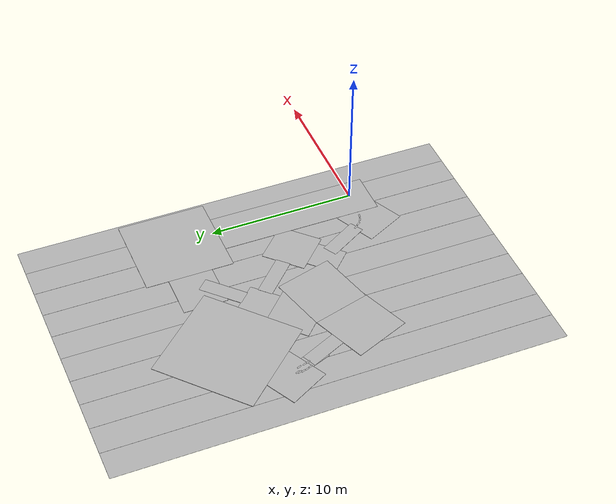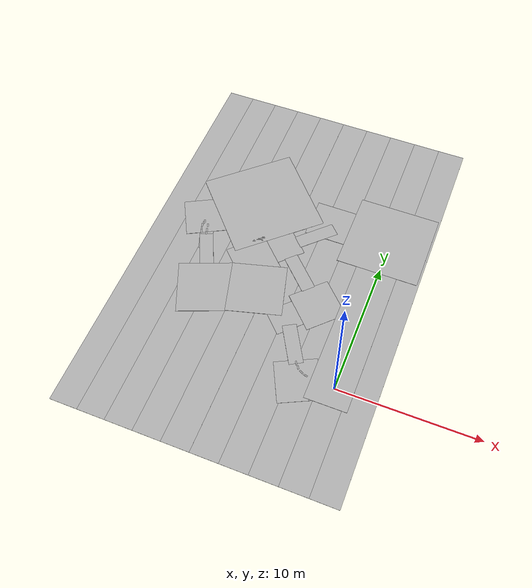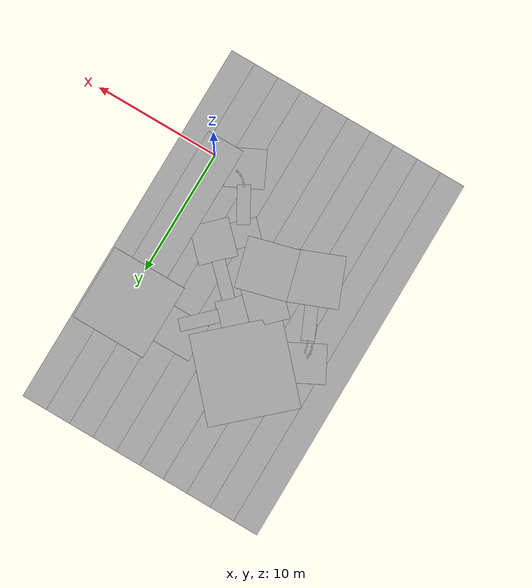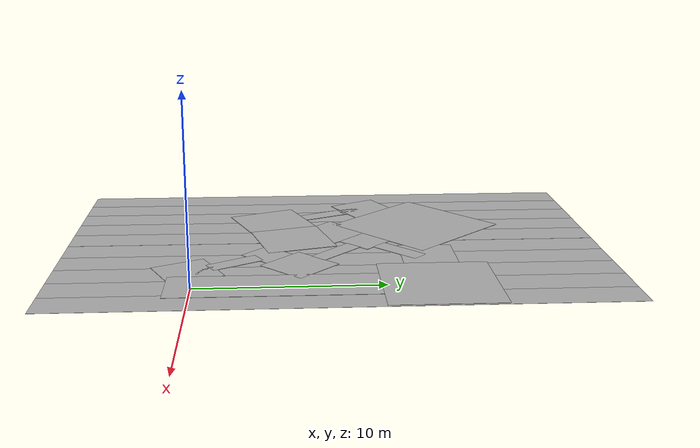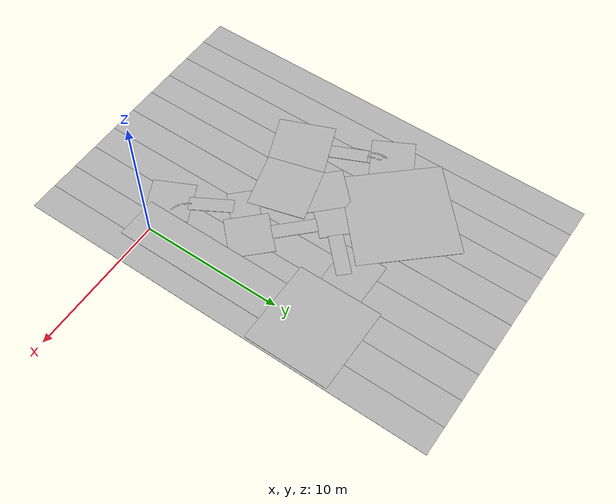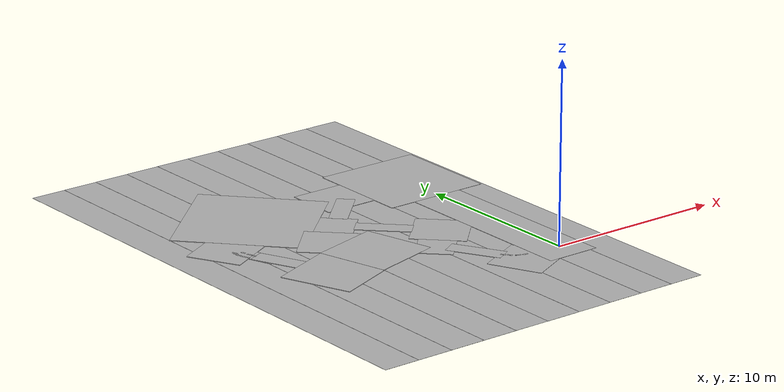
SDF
<sdf version="1.6">
 <world name="default">
  <light name="sun" type="directional">
   <pose>0 0 10 0 -0 0</pose>
   <diffuse>0.8 0.8 0.8 1</diffuse>
   <specular>0.2 0.2 0.2 1</specular>
   <attenuation>
    <range>1000</range>
    <constant>0.9</constant>
    <linear>0.01</linear>
    <quadratic>0.001</quadratic>
   </attenuation>
   <direction>-0.5 0.1 -0.9</direction>
  </light>
  <gravity>0 0 -9.8</gravity>
  <magnetic_field>6e-06 2.3e-05 -4.2e-05</magnetic_field>
  <atmosphere type="adiabatic"/>
  <physics name="default_physics" default="0" type="ode">
   <max_step_size>0.001</max_step_size>
   <real_time_factor>1</real_time_factor>
   <real_time_update_rate>1000</real_time_update_rate>
  </physics>
  <scene><ambient>0.4 0.4 0.4 1</ambient><background>0.7 0.7 0.7 1</background><shadows>1</shadows></scene>
  <audio><device>default</device></audio>
  <spherical_coordinates>
   <surface_model>EARTH_WGS84</surface_model>
   <latitude_deg>0</latitude_deg>
   <longitude_deg>0</longitude_deg>
   <elevation>0</elevation>
   <heading_deg>0</heading_deg>
  </spherical_coordinates>
  <model name="start_w400_black">
   <static>1</static>
   <link name="link">
    <collision name="collision">
     <geometry><box><size>11 3 0.05</size></box></geometry>
     <surface><friction><ode><mu>100</mu><mu2>50</mu2></ode></friction></surface>
    </collision>
    <visual name="visual">
     <cast_shadows>0</cast_shadows>
     <geometry><box><size>11 3 0.05</size></box></geometry>
     <material>
      <script>
       <uri>model://start_w400_black/materials/scripts</uri>
       <uri>model://start_w400_black/materials/textures/</uri>
       <name>start_w400_black/Image</name>
      </script>
     </material>
    </visual>
   </link>
   <pose>-0.193338 4.17342 0 0 -0 1.57079</pose>
  </model>
  <model name="left_curve_r300_a90_00">
   <static>1</static>
   <link name="link">
    <collision name="collision">
     <geometry><box><size>6 6 0.05</size></box></geometry>
     <surface><friction><ode><mu>100</mu><mu2>50</mu2></ode></friction></surface>
    </collision>
    <visual name="visual">
     <cast_shadows>0</cast_shadows>
     <geometry><box><size>6 6 0.05</size></box></geometry>
     <material>
      <script>
       <uri>model://left_curve_r300_a90_00/materials/scripts</uri>
       <uri>model://left_curve_r300_a90_00/materials/textures/</uri>
       <name>left_curve_r300_a90_00/Image</name>
      </script>
     </material>
    </visual>
   </link>
   <pose>-0.193023 12.674 0 0 -0 3.14159</pose>
  </model>
  <model name="left_curve_r150_a45_030">
   <static>1</static>
   <link name="link">
    <collision name="collision">
     <geometry><box><size>3 3 0.05</size></box></geometry>
     <surface><friction><ode><mu>100</mu><mu2>50</mu2></ode></friction></surface>
    </collision>
    <visual name="visual">
     <cast_shadows>0</cast_shadows>
     <geometry><box><size>3 3 0.05</size></box></geometry>
     <material>
      <script>
       <uri>model://left_curve_r150_a45_030/materials/scripts</uri>
       <uri>model://left_curve_r150_a45_030/materials/textures/</uri>
       <name>left_curve_r150_a45_030/Image</name>
      </script>
     </material>
    </visual>
   </link>
   <pose>-4.6927 12.6748 0 0 0 -1.5708</pose>
  </model>
  <model name="stop_crossing">
   <static>1</static>
   <link name="link">
    <collision name="collision">
     <geometry><box><size>2.1 2.1 0.05</size></box></geometry>
     <surface><friction><ode><mu>100</mu><mu2>50</mu2></ode></friction></surface>
    </collision>
    <visual name="visual">
     <cast_shadows>0</cast_shadows>
     <geometry><box><size>2.1 2.1 0.05</size></box></geometry>
     <material>
      <script>
       <uri>model://stop_crossing/materials/scripts</uri>
       <uri>model://stop_crossing/materials/textures/</uri>
       <name>stop_crossing/Image</name>
      </script>
     </material>
    </visual>
   </link>
   <pose>-7.10184 9.42657 0 0 -0 0.789918</pose>
  </model>
  <model name="straight_300_o_25">
   <static>1</static>
   <link name="link">
    <collision name="collision">
     <geometry><box><size>3 1 0.05</size></box></geometry>
     <surface><friction><ode><mu>100</mu><mu2>50</mu2></ode></friction></surface>
    </collision>
    <visual name="visual">
     <cast_shadows>0</cast_shadows>
     <geometry><box><size>3 1 0.05</size></box></geometry>
     <material>
      <script>
       <uri>model://straight_300_o_25/materials/scripts</uri>
       <uri>model://straight_300_o_25/materials/textures/</uri>
       <name>straight_300_o_25/Image</name>
      </script>
     </material>
    </visual>
   </link>
   <pose>-5.32382 11.1876 0.001 0 -0 0.774294</pose>
  </model>
  <model name="straight_300_o_25_0">
   <static>1</static>
   <link name="link">
    <collision name="collision">
     <geometry><box><size>3 1 0.05</size></box></geometry>
     <surface><friction><ode><mu>100</mu><mu2>50</mu2></ode></friction></surface>
    </collision>
    <visual name="visual">
     <cast_shadows>0</cast_shadows>
     <geometry><box><size>3 1 0.05</size></box></geometry>
     <material>
      <script>
       <uri>model://straight_300_o_25/materials/scripts</uri>
       <uri>model://straight_300_o_25/materials/textures/</uri>
       <name>straight_300_o_25/Image</name>
      </script>
     </material>
    </visual>
   </link>
   <pose>-5.32432 7.66399 0.00145 0 0 -0.781825</pose>
  </model>
  <model name="right_curve_r150_a90_o30">
   <static>1</static>
   <link name="link">
    <collision name="collision">
     <geometry><box><size>3 3 0.05</size></box></geometry>
     <surface><friction><ode><mu>100</mu><mu2>50</mu2></ode></friction></surface>
    </collision>
    <visual name="visual">
     <cast_shadows>0</cast_shadows>
     <geometry><box><size>3 3 0.05</size></box></geometry>
     <material>
      <script>
       <uri>model://right_curve_r150_a90_o30/materials/scripts</uri>
       <uri>model://right_curve_r150_a90_o30/materials/textures/</uri>
       <name>right_curve_r150_a90_o30/Image</name>
      </script>
     </material>
    </visual>
   </link>
   <pose>-3.23155 5.58171 0 0 -0 2.35677</pose>
  </model>
  <model name="left_curve_r100_a75_025">
   <static>1</static>
   <link name="link">
    <collision name="collision">
     <geometry><box><size>2 2 0.05</size></box></geometry>
     <surface><friction><ode><mu>100</mu><mu2>50</mu2></ode></friction></surface>
    </collision>
    <visual name="visual">
     <cast_shadows>0</cast_shadows>
     <geometry><box><size>2 2 0.05</size></box></geometry>
     <material>
      <script>
       <uri>model://left_curve_r100_a75_025/materials/scripts</uri>
       <uri>model://left_curve_r100_a75_025/materials/textures/</uri>
       <name>left_curve_r100_a75_025/Image</name>
      </script>
     </material>
    </visual>
   </link>
   <pose>-4.99373 3.81358 0 0 0 -0.782313</pose>
  </model>
  <model name="straight_300_o_25_0_clone">
   <static>1</static>
   <link name="link">
    <collision name="collision">
     <geometry><box><size>3 1 0.05</size></box></geometry>
     <surface><friction><ode><mu>100</mu><mu2>50</mu2></ode></friction></surface>
    </collision>
    <visual name="visual">
     <cast_shadows>0</cast_shadows>
     <geometry><box><size>3 1 0.05</size></box></geometry>
     <material>
      <script>
       <uri>model://straight_300_o_25/materials/scripts</uri>
       <uri>model://straight_300_o_25/materials/textures/</uri>
       <name>straight_300_o_25/Image</name>
      </script>
     </material>
    </visual>
   </link>
   <pose>-3.7385 2.09443 0.00145 0 -0 2.0927</pose>
  </model>
  <model name="right_curve_r150_a90_o30_clone">
   <static>1</static>
   <link name="link">
    <collision name="collision">
     <geometry><box><size>3 3 0.05</size></box></geometry>
     <surface><friction><ode><mu>100</mu><mu2>50</mu2></ode></friction></surface>
    </collision>
    <visual name="visual">
     <cast_shadows>0</cast_shadows>
     <geometry><box><size>3 3 0.05</size></box></geometry>
     <material>
      <script>
       <uri>model://right_curve_r150_a90_o30/materials/scripts</uri>
       <uri>model://right_curve_r150_a90_o30/materials/textures/</uri>
       <name>right_curve_r150_a90_o30/Image</name>
      </script>
     </material>
    </visual>
   </link>
   <pose>-2.46675 -0.335688 -0.002037 0 -0 0.452633</pose>
  </model>
  <model name="left_curve_r150_a60_020">
   <static>1</static>
   <link name="link">
    <collision name="collision">
     <geometry><box><size>3 3 0.05</size></box></geometry>
     <surface><friction><ode><mu>100</mu><mu2>50</mu2></ode></friction></surface>
    </collision>
    <visual name="visual">
     <cast_shadows>0</cast_shadows>
     <geometry><box><size>3 3 0.05</size></box></geometry>
     <material>
      <script>
       <uri>model://left_curve_r150_a60_020/materials/scripts</uri>
       <uri>model://left_curve_r150_a60_020/materials/textures/</uri>
       <name>left_curve_r150_a60_020/Image</name>
      </script>
     </material>
    </visual>
   </link>
   <pose>-8.89192 7.61762 0.001 0 0 -0.779843</pose>
  </model>
  <model name="right_curve_r200_a90_o20">
   <static>1</static>
   <link name="link">
    <collision name="collision">
     <geometry><box><size>4 4 0.05</size></box></geometry>
     <surface><friction><ode><mu>100</mu><mu2>50</mu2></ode></friction></surface>
    </collision>
    <visual name="visual">
     <cast_shadows>0</cast_shadows>
     <geometry><box><size>4 4 0.05</size></box></geometry>
     <material>
      <script>
       <uri>model://right_curve_r200_a90_o20/materials/scripts</uri>
       <uri>model://right_curve_r200_a90_o20/materials/textures/</uri>
       <name>right_curve_r200_a90_o20/Image</name>
      </script>
     </material>
    </visual>
   </link>
   <pose>-7.6945 5.3036 0.002 0 -0 1.83523</pose>
  </model>
  <model name="right_curve_r200_a90_o20_0">
   <static>1</static>
   <link name="link">
    <collision name="collision">
     <geometry><box><size>4 4 0.05</size></box></geometry>
     <surface><friction><ode><mu>100</mu><mu2>50</mu2></ode></friction></surface>
    </collision>
    <visual name="visual">
     <cast_shadows>0</cast_shadows>
     <geometry><box><size>4 4 0.05</size></box></geometry>
     <material>
      <script>
       <uri>model://right_curve_r200_a90_o20/materials/scripts</uri>
       <uri>model://right_curve_r200_a90_o20/materials/textures/</uri>
       <name>right_curve_r200_a90_o20/Image</name>
      </script>
     </material>
    </visual>
   </link>
   <pose>-11.1447 4.13942 0.001 0 -0 0.381381</pose>
  </model>
  <model name="right_curve_r150_a90_o30_0">
   <static>1</static>
   <link name="link">
    <collision name="collision">
     <geometry><box><size>3 3 0.05</size></box></geometry>
     <surface><friction><ode><mu>100</mu><mu2>50</mu2></ode></friction></surface>
    </collision>
    <visual name="visual">
     <cast_shadows>0</cast_shadows>
     <geometry><box><size>3 3 0.05</size></box></geometry>
     <material>
      <script>
       <uri>model://right_curve_r150_a90_o30/materials/scripts</uri>
       <uri>model://right_curve_r150_a90_o30/materials/textures/</uri>
       <name>right_curve_r150_a90_o30/Image</name>
      </script>
     </material>
    </visual>
   </link>
   <pose>-13.7237 9.88072 0 0 0 -1.08295</pose>
  </model>
  <model name="straight_300_o_25_0_clone_clone">
   <static>1</static>
   <link name="link">
    <collision name="collision">
     <geometry><box><size>3 1 0.05</size></box></geometry>
     <surface><friction><ode><mu>100</mu><mu2>50</mu2></ode></friction></surface>
    </collision>
    <visual name="visual">
     <cast_shadows>0</cast_shadows>
     <geometry><box><size>3 1 0.05</size></box></geometry>
     <material>
      <script>
       <uri>model://straight_300_o_25/materials/scripts</uri>
       <uri>model://straight_300_o_25/materials/textures/</uri>
       <name>straight_300_o_25/Image</name>
      </script>
     </material>
    </visual>
   </link>
   <pose>-12.3535 7.02768 -0.001 0 -0 1.99398</pose>
  </model>
  <model name="right_curve_r350_a90_o20">
   <static>1</static>
   <link name="link">
    <collision name="collision">
     <geometry><box><size>7 7 0.05</size></box></geometry>
     <surface><friction><ode><mu>100</mu><mu2>50</mu2></ode></friction></surface>
    </collision>
    <visual name="visual">
     <cast_shadows>0</cast_shadows>
     <geometry><box><size>7 7 0.05</size></box></geometry>
     <material>
      <script>
       <uri>model://right_curve_r350_a90_o20/materials/scripts</uri>
       <uri>model://right_curve_r350_a90_o20/materials/textures/</uri>
       <name>right_curve_r350_a90_o20/Image</name>
      </script>
     </material>
    </visual>
   </link>
   <pose>-10.1542 12.6944 0.001 0 0 -2.40206</pose>
  </model>
  <model name="straight_300_o_25_0_clone_clone_clone">
   <static>1</static>
   <link name="link">
    <collision name="collision">
     <geometry><box><size>3 1 0.05</size></box></geometry>
     <surface><friction><ode><mu>100</mu><mu2>50</mu2></ode></friction></surface>
    </collision>
    <visual name="visual">
     <cast_shadows>0</cast_shadows>
     <geometry><box><size>3 1 0.05</size></box></geometry>
     <material>
      <script>
       <uri>model://straight_300_o_25/materials/scripts</uri>
       <uri>model://straight_300_o_25/materials/textures/</uri>
       <name>straight_300_o_25/Image</name>
      </script>
     </material>
    </visual>
   </link>
   <pose>-13.0463 8.61101 -0.002 0 -0 1.92031</pose>
  </model>
  <model name="black_tile_w200_h3000">
   <static>1</static>
   <link name="link">
    <collision name="collision">
     <geometry><box><size>2 30 0.01</size></box></geometry>
     <surface><friction><ode><mu>100</mu><mu2>50</mu2></ode></friction></surface>
    </collision>
    <visual name="visual">
     <cast_shadows>0</cast_shadows>
     <geometry><box><size>2 30 0.01</size></box></geometry>
     <material>
      <script>
       <uri>model://black_tile_w200_h3000/materials/scripts</uri>
       <uri>model://black_tile_w200_h3000/materials/textures/</uri>
       <name>black_tile_w200_h3000/Image</name>
      </script>
     </material>
    </visual>
   </link>
   <pose>-0.05699 7.57177 0.003333 0 -0 0</pose>
  </model>
  <model name="black_tile_w200_h3000_0">
   <static>1</static>
   <link name="link">
    <collision name="collision">
     <geometry><box><size>2 30 0.01</size></box></geometry>
     <surface><friction><ode><mu>100</mu><mu2>50</mu2></ode></friction></surface>
    </collision>
    <visual name="visual">
     <cast_shadows>0</cast_shadows>
     <geometry><box><size>2 30 0.01</size></box></geometry>
     <material>
      <script>
       <uri>model://black_tile_w200_h3000/materials/scripts</uri>
       <uri>model://black_tile_w200_h3000/materials/textures/</uri>
       <name>black_tile_w200_h3000/Image</name>
      </script>
     </material>
    </visual>
   </link>
   <pose>-2.05699 7.57177 0 0 -0 0</pose>
  </model>
  <model name="black_tile_w200_h3000_1">
   <static>1</static>
   <link name="link">
    <collision name="collision">
     <geometry><box><size>2 30 0.01</size></box></geometry>
     <surface><friction><ode><mu>100</mu><mu2>50</mu2></ode></friction></surface>
    </collision>
    <visual name="visual">
     <cast_shadows>0</cast_shadows>
     <geometry><box><size>2 30 0.01</size></box></geometry>
     <material>
      <script>
       <uri>model://black_tile_w200_h3000/materials/scripts</uri>
       <uri>model://black_tile_w200_h3000/materials/textures/</uri>
       <name>black_tile_w200_h3000/Image</name>
      </script>
     </material>
    </visual>
   </link>
   <pose>1.94301 7.57177 0.006667 0 -0 0</pose>
  </model>
  <model name="black_tile_w200_h3000_2">
   <static>1</static>
   <link name="link">
    <collision name="collision">
     <geometry><box><size>2 30 0.01</size></box></geometry>
     <surface><friction><ode><mu>100</mu><mu2>50</mu2></ode></friction></surface>
    </collision>
    <visual name="visual">
     <cast_shadows>0</cast_shadows>
     <geometry><box><size>2 30 0.01</size></box></geometry>
     <material>
      <script>
       <uri>model://black_tile_w200_h3000/materials/scripts</uri>
       <uri>model://black_tile_w200_h3000/materials/textures/</uri>
       <name>black_tile_w200_h3000/Image</name>
      </script>
     </material>
    </visual>
   </link>
   <pose>-4.05699 7.57177 -0.003333 0 -0 0</pose>
  </model>
  <model name="black_tile_w200_h3000_3">
   <static>1</static>
   <link name="link">
    <collision name="collision">
     <geometry><box><size>2 30 0.01</size></box></geometry>
     <surface><friction><ode><mu>100</mu><mu2>50</mu2></ode></friction></surface>
    </collision>
    <visual name="visual">
     <cast_shadows>0</cast_shadows>
     <geometry><box><size>2 30 0.01</size></box></geometry>
     <material>
      <script>
       <uri>model://black_tile_w200_h3000/materials/scripts</uri>
       <uri>model://black_tile_w200_h3000/materials/textures/</uri>
       <name>black_tile_w200_h3000/Image</name>
      </script>
     </material>
    </visual>
   </link>
   <pose>-6.05699 7.57177 -0.006667 0 -0 0</pose>
  </model>
  <model name="black_tile_w200_h3000_4">
   <static>1</static>
   <link name="link">
    <collision name="collision">
     <geometry><box><size>2 30 0.01</size></box></geometry>
     <surface><friction><ode><mu>100</mu><mu2>50</mu2></ode></friction></surface>
    </collision>
    <visual name="visual">
     <cast_shadows>0</cast_shadows>
     <geometry><box><size>2 30 0.01</size></box></geometry>
     <material>
      <script>
       <uri>model://black_tile_w200_h3000/materials/scripts</uri>
       <uri>model://black_tile_w200_h3000/materials/textures/</uri>
       <name>black_tile_w200_h3000/Image</name>
      </script>
     </material>
    </visual>
   </link>
   <pose>-8.05699 7.57177 -0.003333 0 -0 0</pose>
  </model>
  <model name="black_tile_w200_h3000_5">
   <static>1</static>
   <link name="link">
    <collision name="collision">
     <geometry><box><size>2 30 0.01</size></box></geometry>
     <surface><friction><ode><mu>100</mu><mu2>50</mu2></ode></friction></surface>
    </collision>
    <visual name="visual">
     <cast_shadows>0</cast_shadows>
     <geometry><box><size>2 30 0.01</size></box></geometry>
     <material>
      <script>
       <uri>model://black_tile_w200_h3000/materials/scripts</uri>
       <uri>model://black_tile_w200_h3000/materials/textures/</uri>
       <name>black_tile_w200_h3000/Image</name>
      </script>
     </material>
    </visual>
   </link>
   <pose>-10.057 7.57177 -0.006667 0 -0 0</pose>
  </model>
  <model name="black_tile_w200_h3000_6">
   <static>1</static>
   <link name="link">
    <collision name="collision">
     <geometry><box><size>2 30 0.01</size></box></geometry>
     <surface><friction><ode><mu>100</mu><mu2>50</mu2></ode></friction></surface>
    </collision>
    <visual name="visual">
     <cast_shadows>0</cast_shadows>
     <geometry><box><size>2 30 0.01</size></box></geometry>
     <material>
      <script>
       <uri>model://black_tile_w200_h3000/materials/scripts</uri>
       <uri>model://black_tile_w200_h3000/materials/textures/</uri>
       <name>black_tile_w200_h3000/Image</name>
      </script>
     </material>
    </visual>
   </link>
   <pose>-12.057 7.57177 -0.01 0 -0 0</pose>
  </model>
  <model name="black_tile_w200_h3000_7">
   <static>1</static>
   <link name="link">
    <collision name="collision">
     <geometry><box><size>2 30 0.01</size></box></geometry>
     <surface><friction><ode><mu>100</mu><mu2>50</mu2></ode></friction></surface>
    </collision>
    <visual name="visual">
     <cast_shadows>0</cast_shadows>
     <geometry><box><size>2 30 0.01</size></box></geometry>
     <material>
      <script>
       <uri>model://black_tile_w200_h3000/materials/scripts</uri>
       <uri>model://black_tile_w200_h3000/materials/textures/</uri>
       <name>black_tile_w200_h3000/Image</name>
      </script>
     </material>
    </visual>
   </link>
   <pose>-14.057 7.57177 -0.013333 0 -0 0</pose>
  </model>
  <model name="black_tile_w200_h3000_8">
   <static>1</static>
   <link name="link">
    <collision name="collision">
     <geometry><box><size>2 30 0.01</size></box></geometry>
     <surface><friction><ode><mu>100</mu><mu2>50</mu2></ode></friction></surface>
    </collision>
    <visual name="visual">
     <cast_shadows>0</cast_shadows>
     <geometry><box><size>2 30 0.01</size></box></geometry>
     <material>
      <script>
       <uri>model://black_tile_w200_h3000/materials/scripts</uri>
       <uri>model://black_tile_w200_h3000/materials/textures/</uri>
       <name>black_tile_w200_h3000/Image</name>
      </script>
     </material>
    </visual>
   </link>
   <pose>-16.057 7.57177 -0.016667 0 -0 0</pose>
  </model>
  <model name="line_remove">
   <static>1</static>
   <link name="link">
    <collision name="collision">
     <geometry><box><size>0.1 0.3 0.01</size></box></geometry>
     <surface><friction><ode><mu>100</mu><mu2>50</mu2></ode></friction></surface>
    </collision>
    <visual name="visual">
     <cast_shadows>0</cast_shadows>
     <geometry><box><size>0.1 0.3 0.01</size></box></geometry>
     <material>
      <script>
       <uri>model://line_remove/materials/scripts</uri>
       <uri>model://line_remove/materials/textures/</uri>
       <name>line_remove/Image</name>
      </script>
     </material>
    </visual>
   </link>
   <pose>-3.01231 0.839662 0.02481 0 -0 0.569907</pose>
  </model>
  <model name="line_remove_clone">
   <static>1</static>
   <link name="link">
    <collision name="collision">
     <geometry><box><size>0.1 0.3 0.01</size></box></geometry>
     <surface><friction><ode><mu>100</mu><mu2>50</mu2></ode></friction></surface>
    </collision>
    <visual name="visual">
     <cast_shadows>0</cast_shadows>
     <geometry><box><size>0.1 0.3 0.01</size></box></geometry>
     <material>
      <script>
       <uri>model://line_remove/materials/scripts</uri>
       <uri>model://line_remove/materials/textures/</uri>
       <name>line_remove/Image</name>
      </script>
     </material>
    </visual>
   </link>
   <pose>-2.78276 0.575236 0.02481 0 -0 0.569907</pose>
  </model>
  <model name="line_remove_clone_0">
   <static>1</static>
   <link name="link">
    <collision name="collision">
     <geometry><box><size>0.1 0.3 0.01</size></box></geometry>
     <surface><friction><ode><mu>100</mu><mu2>50</mu2></ode></friction></surface>
    </collision>
    <visual name="visual">
     <cast_shadows>0</cast_shadows>
     <geometry><box><size>0.1 0.3 0.01</size></box></geometry>
     <material>
      <script>
       <uri>model://line_remove/materials/scripts</uri>
       <uri>model://line_remove/materials/textures/</uri>
       <name>line_remove/Image</name>
      </script>
     </material>
    </visual>
   </link>
   <pose>-2.453 0.333235 0.02481 0 -0 1.10056</pose>
  </model>
  <model name="line_remove_clone_1">
   <static>1</static>
   <link name="link">
    <collision name="collision">
     <geometry><box><size>0.1 0.3 0.01</size></box></geometry>
     <surface><friction><ode><mu>100</mu><mu2>50</mu2></ode></friction></surface>
    </collision>
    <visual name="visual">
     <cast_shadows>0</cast_shadows>
     <geometry><box><size>0.1 0.3 0.01</size></box></geometry>
     <material>
      <script>
       <uri>model://line_remove/materials/scripts</uri>
       <uri>model://line_remove/materials/textures/</uri>
       <name>line_remove/Image</name>
      </script>
     </material>
    </visual>
   </link>
   <pose>-2.0977 0.201126 0.02481 0 -0 1.37064</pose>
  </model>
  <model name="line_remove_clone_2">
   <static>1</static>
   <link name="link">
    <collision name="collision">
     <geometry><box><size>0.1 0.3 0.01</size></box></geometry>
     <surface><friction><ode><mu>100</mu><mu2>50</mu2></ode></friction></surface>
    </collision>
    <visual name="visual">
     <cast_shadows>0</cast_shadows>
     <geometry><box><size>0.1 0.3 0.01</size></box></geometry>
     <material>
      <script>
       <uri>model://line_remove/materials/scripts</uri>
       <uri>model://line_remove/materials/textures/</uri>
       <name>line_remove/Image</name>
      </script>
     </material>
    </visual>
   </link>
   <pose>-13.0898 8.72684 0.021036 0 -0 0.359211</pose>
  </model>
  <model name="line_remove_clone_2_clone">
   <static>1</static>
   <link name="link">
    <collision name="collision">
     <geometry><box><size>0.1 0.3 0.01</size></box></geometry>
     <surface><friction><ode><mu>100</mu><mu2>50</mu2></ode></friction></surface>
    </collision>
    <visual name="visual">
     <cast_shadows>0</cast_shadows>
     <geometry><box><size>0.1 0.3 0.01</size></box></geometry>
     <material>
      <script>
       <uri>model://line_remove/materials/scripts</uri>
       <uri>model://line_remove/materials/textures/</uri>
       <name>line_remove/Image</name>
      </script>
     </material>
    </visual>
   </link>
   <pose>-13.1913 9.13982 0.021036 0 -0 0.359211</pose>
  </model>
  <model name="line_remove_clone_2_clone_0">
   <static>1</static>
   <link name="link">
    <collision name="collision">
     <geometry><box><size>0.1 0.3 0.01</size></box></geometry>
     <surface><friction><ode><mu>100</mu><mu2>50</mu2></ode></friction></surface>
    </collision>
    <visual name="visual">
     <cast_shadows>0</cast_shadows>
     <geometry><box><size>0.1 0.3 0.01</size></box></geometry>
     <material>
      <script>
       <uri>model://line_remove/materials/scripts</uri>
       <uri>model://line_remove/materials/textures/</uri>
       <name>line_remove/Image</name>
      </script>
     </material>
    </visual>
   </link>
   <pose>-13.0151 8.47972 0.021036 0 -0 0.359211</pose>
  </model>
  <model name="line_remove_clone_2_clone_1">
   <static>1</static>
   <link name="link">
    <collision name="collision">
     <geometry><box><size>0.1 0.3 0.01</size></box></geometry>
     <surface><friction><ode><mu>100</mu><mu2>50</mu2></ode></friction></surface>
    </collision>
    <visual name="visual">
     <cast_shadows>0</cast_shadows>
     <geometry><box><size>0.1 0.3 0.01</size></box></geometry>
     <material>
      <script>
       <uri>model://line_remove/materials/scripts</uri>
       <uri>model://line_remove/materials/textures/</uri>
       <name>line_remove/Image</name>
      </script>
     </material>
    </visual>
   </link>
   <pose>-13.4228 8.48987 0.021036 0 -0 0.359211</pose>
  </model>
  <model name="line_remove_clone_2_clone_2">
   <static>1</static>
   <link name="link">
    <collision name="collision">
     <geometry><box><size>0.1 0.3 0.01</size></box></geometry>
     <surface><friction><ode><mu>100</mu><mu2>50</mu2></ode></friction></surface>
    </collision>
    <visual name="visual">
     <cast_shadows>0</cast_shadows>
     <geometry><box><size>0.1 0.3 0.01</size></box></geometry>
     <material>
      <script>
       <uri>model://line_remove/materials/scripts</uri>
       <uri>model://line_remove/materials/textures/</uri>
       <name>line_remove/Image</name>
      </script>
     </material>
    </visual>
   </link>
   <pose>-13.5211 8.73612 0.021036 0 -0 0.359211</pose>
  </model>
  <model name="line_remove_clone_2_clone_3">
   <static>1</static>
   <link name="link">
    <collision name="collision">
     <geometry><box><size>0.1 0.3 0.01</size></box></geometry>
     <surface><friction><ode><mu>100</mu><mu2>50</mu2></ode></friction></surface>
    </collision>
    <visual name="visual">
     <cast_shadows>0</cast_shadows>
     <geometry><box><size>0.1 0.3 0.01</size></box></geometry>
     <material>
      <script>
       <uri>model://line_remove/materials/scripts</uri>
       <uri>model://line_remove/materials/textures/</uri>
       <name>line_remove/Image</name>
      </script>
     </material>
    </visual>
   </link>
   <pose>-13.5882 9.00976 0.021036 0 -0 0.359211</pose>
  </model>
  <model name="line_remove_clone_2_clone_4">
   <static>1</static>
   <link name="link">
    <collision name="collision">
     <geometry><box><size>0.1 0.3 0.01</size></box></geometry>
     <surface><friction><ode><mu>100</mu><mu2>50</mu2></ode></friction></surface>
    </collision>
    <visual name="visual">
     <cast_shadows>0</cast_shadows>
     <geometry><box><size>0.1 0.3 0.01</size></box></geometry>
     <material>
      <script>
       <uri>model://line_remove/materials/scripts</uri>
       <uri>model://line_remove/materials/textures/</uri>
       <name>line_remove/Image</name>
      </script>
     </material>
    </visual>
   </link>
   <pose>-13.5859 9.2475 0.021036 0 -0 0.359211</pose>
  </model>
  <model name="line_remove_clone_2_clone_5">
   <static>1</static>
   <link name="link">
    <collision name="collision">
     <geometry><box><size>0.1 0.3 0.01</size></box></geometry>
     <surface><friction><ode><mu>100</mu><mu2>50</mu2></ode></friction></surface>
    </collision>
    <visual name="visual">
     <cast_shadows>0</cast_shadows>
     <geometry><box><size>0.1 0.3 0.01</size></box></geometry>
     <material>
      <script>
       <uri>model://line_remove/materials/scripts</uri>
       <uri>model://line_remove/materials/textures/</uri>
       <name>line_remove/Image</name>
      </script>
     </material>
    </visual>
   </link>
   <pose>-13.5552 9.38927 0.021036 0 -0 0.359211</pose>
  </model>
 </world>
</sdf>
